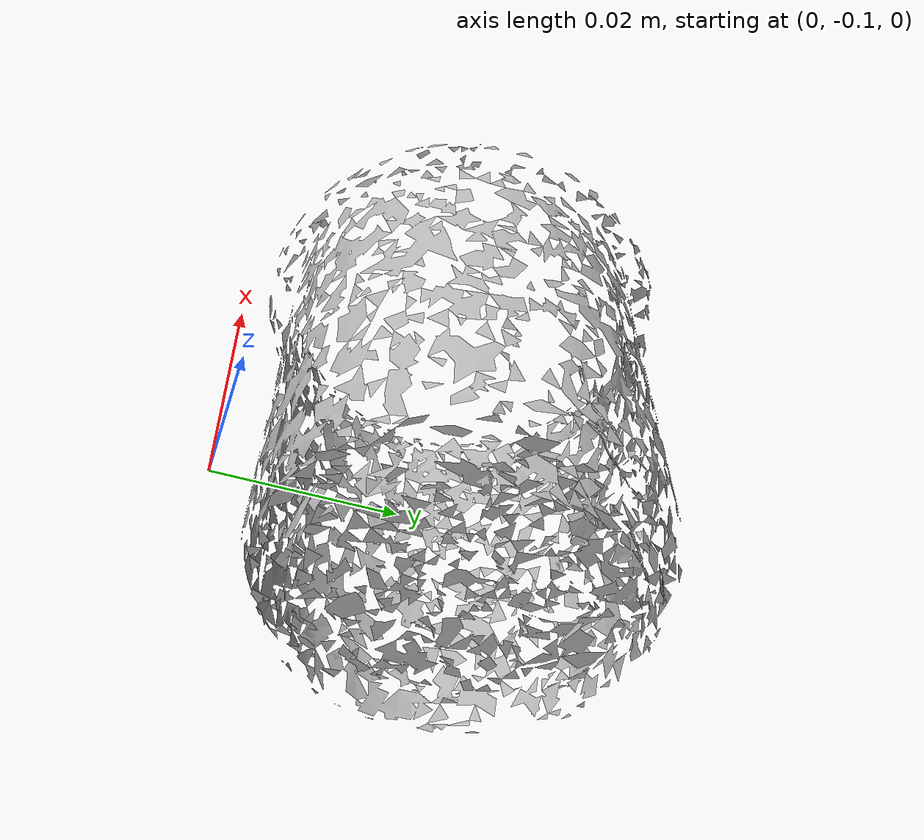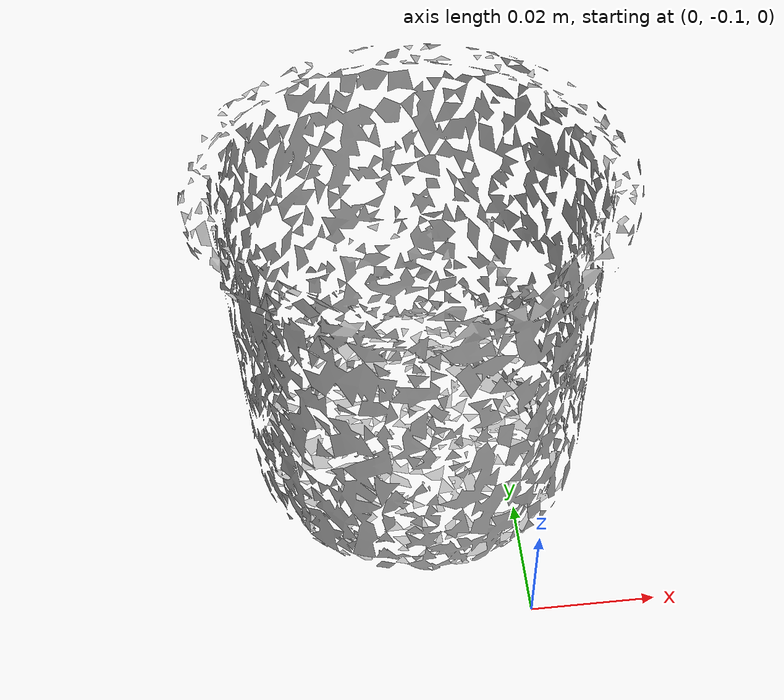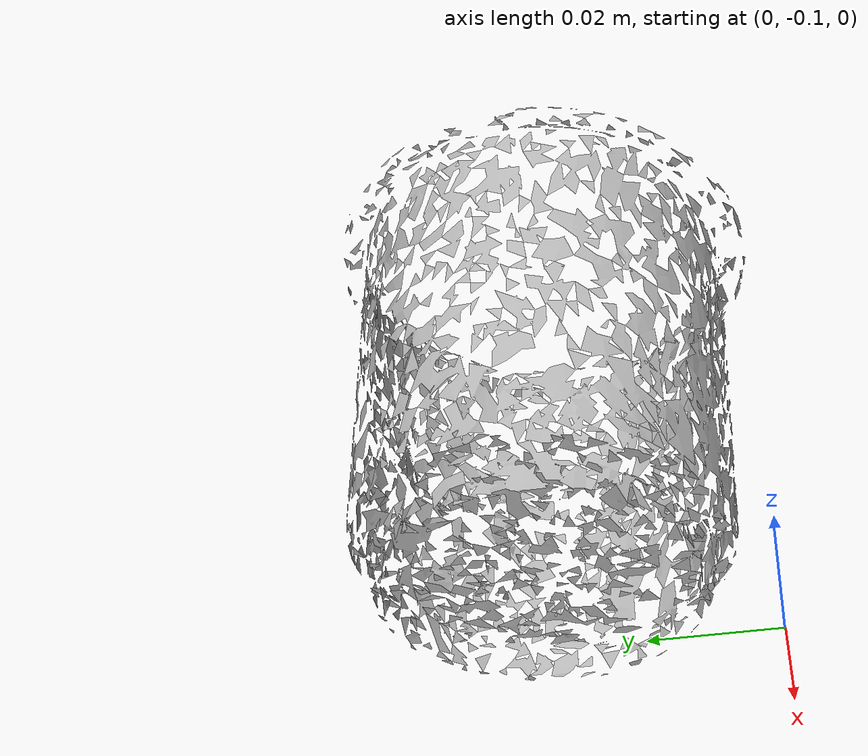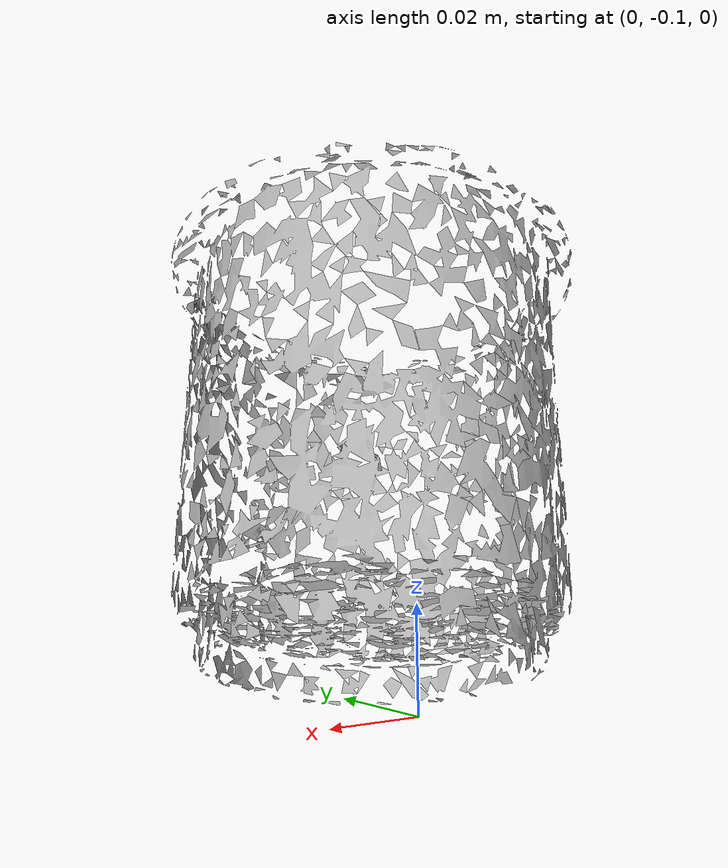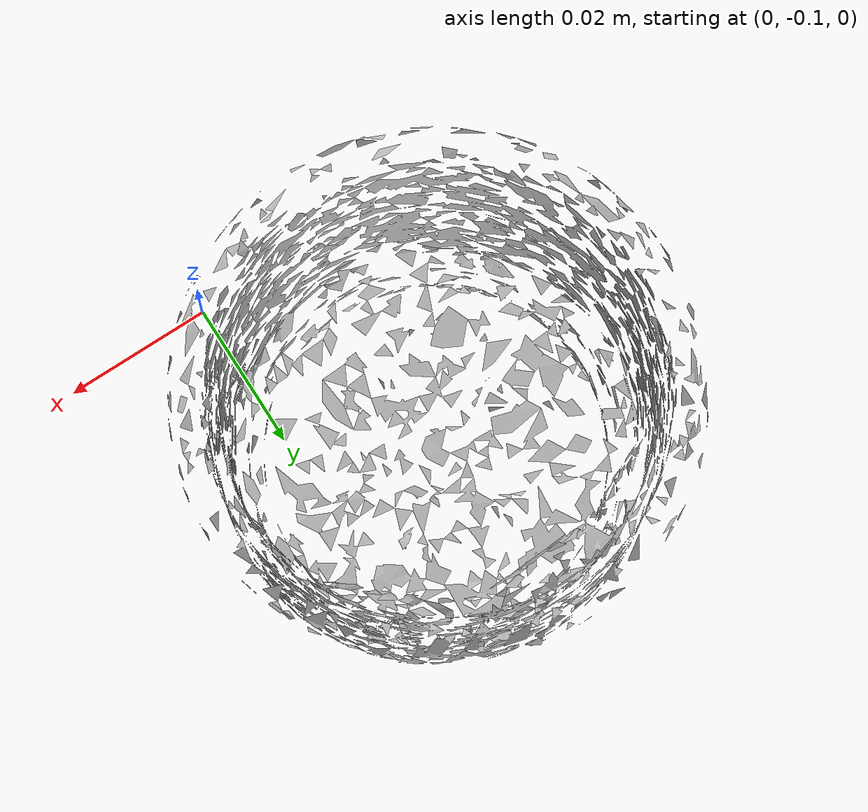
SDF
<?xml version='1.0'?>
<sdf version="1.4">
  <model name="c_cups">
    <static>false</static>
    <link name="link">
      <inertial>
        <pose>-0.01447497482279456 -0.06461685625471408 0.031162156357884614 2.69978839522473 -0.00023511074425175947 3.0347786070511216</pose>
        <mass>2.833011304343816e-05</mass>
        <inertia>
          <ixx>2.084885089389596e-08</ixx>
          <ixy>1.0900810542007764e-24</ixy>
          <ixz>-7.558736512119434e-25</ixz>
          <iyy>2.0444340163285026e-08</iyy>
          <iyz>6.406563253183688e-24</iyz>
          <izz>1.8684373284877546e-08</izz>
        </inertia>
      </inertial>
      <collision name="collision">
        <geometry>
          <mesh>
            <!-- Use a downsampled mesh for collisions -->
            <uri>model://065-c_cups/downsampled.obj</uri>
	        </mesh>
        </geometry>
        <surface>
      </surface>
      </collision>
      <visual name="visual">
        <geometry>
          <mesh>
            <uri>model://065-c_cups/google_16k/textured.obj</uri>
	        </mesh>
        </geometry>
        <material>
          <script>
            <uri>model://065-c_cups/c_cups.material</uri>
            <name>c_cups</name>
          </script>
        </material>
      </visual>
    </link>
  </model>
</sdf>
